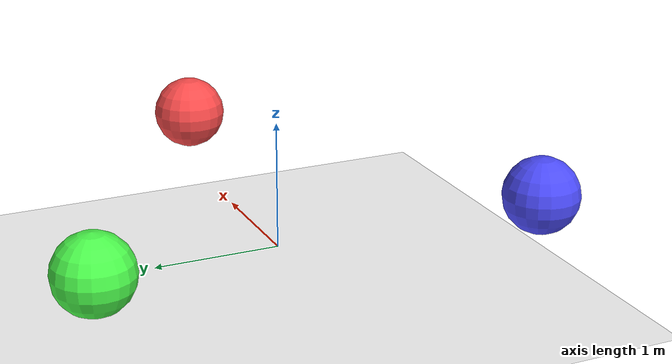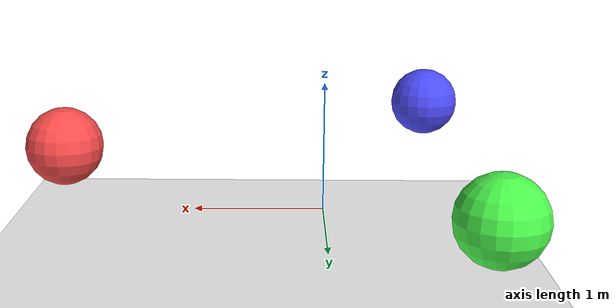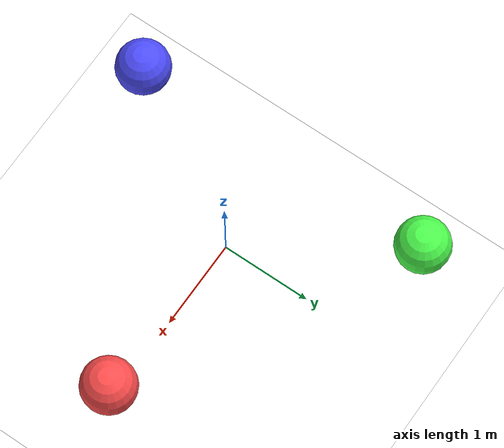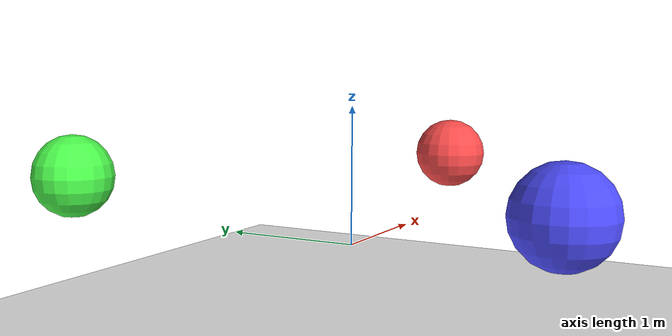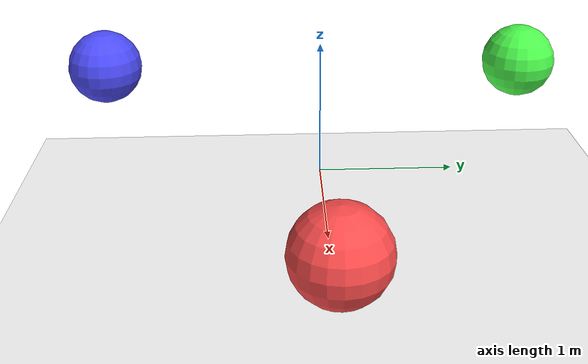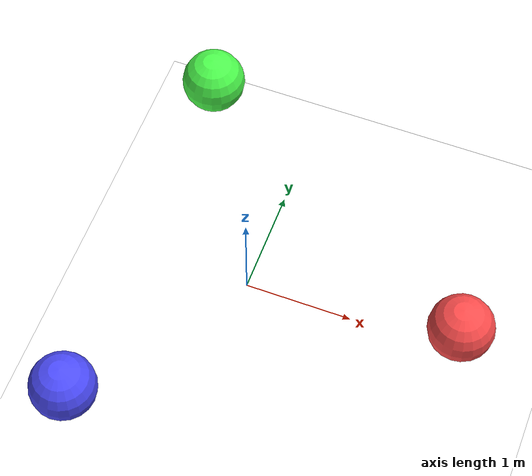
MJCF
<mujoco model="scene3_three_body_collision">
  <compiler angle="radian"/>

  <option timestep="0.002" gravity="0 0 -9.81">
    <flag contact="disable"/>
  </option>

  <visual>
    <global offwidth="800" offheight="800"/>
    <!-- Disable shadows -->
    <quality shadowsize="0"/>
  </visual>

  <asset>
    <!-- Proper white skybox (width & height required) -->
    <texture name="white_skybox"
             type="skybox"
             builtin="flat"
             width="512"
             height="512"
             rgb1="1 1 1"
             rgb2="1 1 1"/>

    <material name="white_floor" rgba="1 1 1 1" reflectance="0"/>
  </asset>

  <worldbody>
    <!-- Simple lighting without shadows -->
    <light directional="true"
           pos="0 0 3"
           dir="0 0 -1"
           diffuse="1 1 1"
           specular="0 0 0"/>

    <geom name="floor"
          type="plane"
          size="5 5 0.1"
          material="white_floor"
          pos="0 0 -0.5"/>

    <body name="target" pos="0 0 0.5">
      <site name="target_site" size="0.01" rgba="1 0 0 0"/>
    </body>

    <body name="sphere_1" pos="2.0 0 0.5">
      <freejoint/>
      <geom type="sphere" size="0.3"
            rgba="1.0 0.3 0.3 1" mass="1"/>
    </body>

    <body name="sphere_2" pos="-1.0 1.732 0.5">
      <freejoint/>
      <geom type="sphere" size="0.3"
            rgba="0.3 1.0 0.3 1" mass="1"/>
    </body>

    <body name="sphere_3" pos="-1.0 -1.732 0.5">
      <freejoint/>
      <geom type="sphere" size="0.3"
            rgba="0.3 0.3 1.0 1" mass="1"/>
    </body>

    <!-- Scaled 1.8x for 800x800 square resolution — spheres bounce up to 2.8m from center -->
    <camera name="cam0" pos="6.3 0 3.2" mode="targetbody" target="target" fovy="50"/>
    <camera name="cam1" pos="0 6.3 3.2" mode="targetbody" target="target" fovy="50"/>
    <camera name="cam2" pos="-6.3 0 3.2" mode="targetbody" target="target" fovy="50"/>
    <camera name="cam3" pos="0 -6.3 3.2" mode="targetbody" target="target" fovy="50"/>

    <camera name="cam4" pos="5.0 5.0 5.4" mode="targetbody" target="target" fovy="50"/>
    <camera name="cam5" pos="-5.0 5.0 5.4" mode="targetbody" target="target" fovy="50"/>
    <camera name="cam6" pos="5.0 -5.0 5.4" mode="targetbody" target="target" fovy="50"/>
    <camera name="cam7" pos="-5.0 -5.0 5.4" mode="targetbody" target="target" fovy="50"/>

    <camera name="cam8" pos="4.5 0 1.4" mode="targetbody" target="target" fovy="55"/>
    <camera name="cam9" pos="-4.5 0 1.4" mode="targetbody" target="target" fovy="55"/>

    <camera name="cam10" pos="0 0 8.1" mode="targetbody" target="target" fovy="45"/>
    <camera name="cam11" pos="2.7 2.7 7.2" mode="targetbody" target="target" fovy="45"/>
  </worldbody>
</mujoco>
